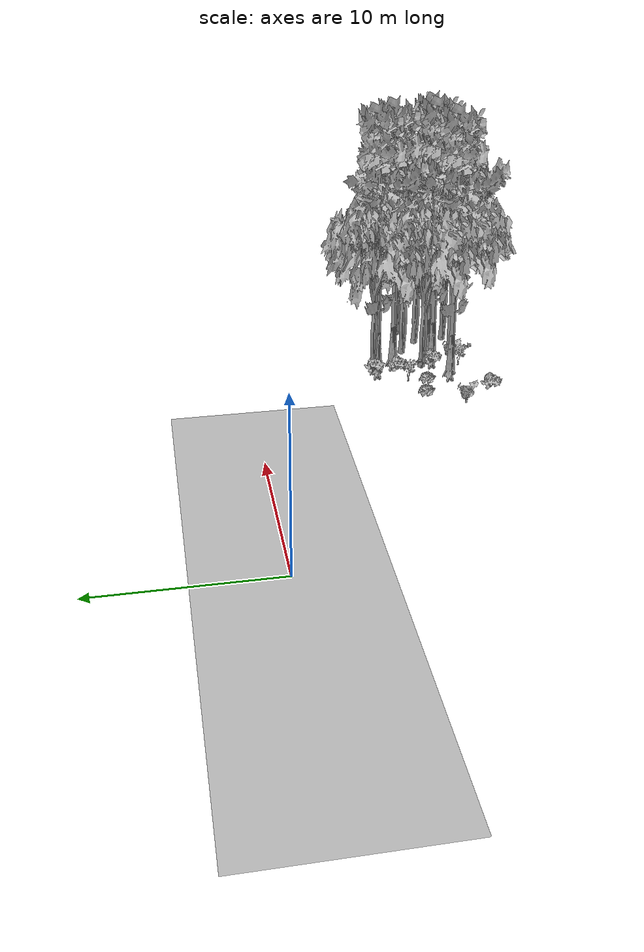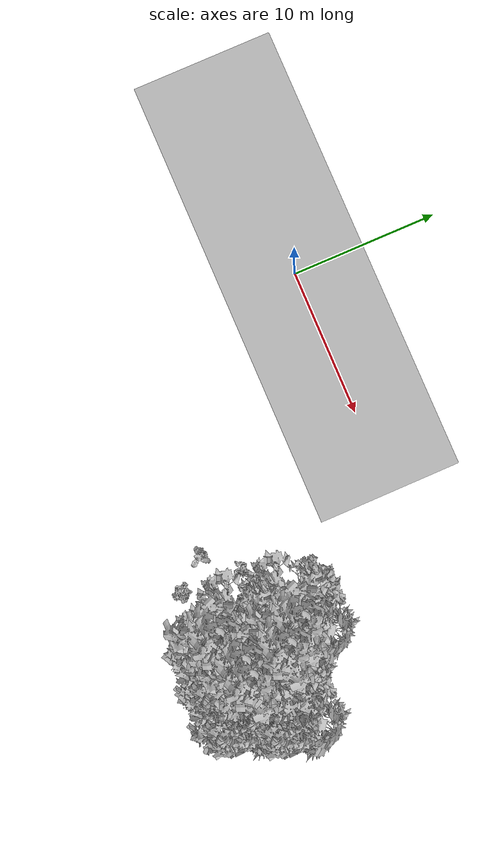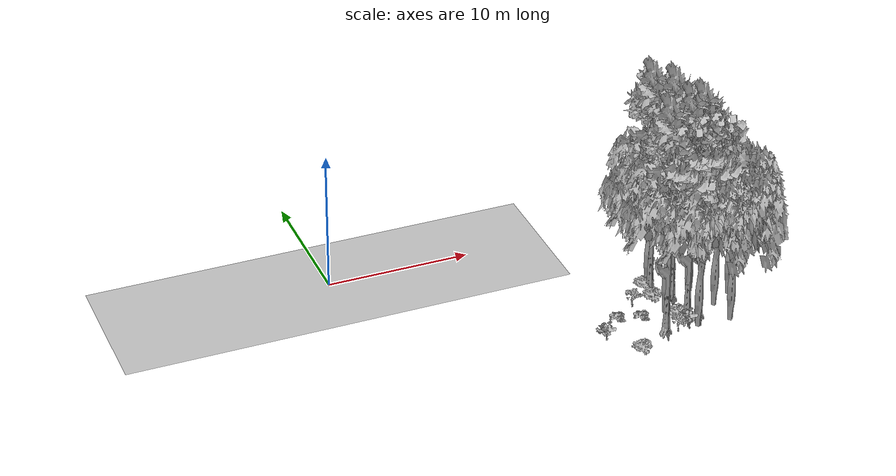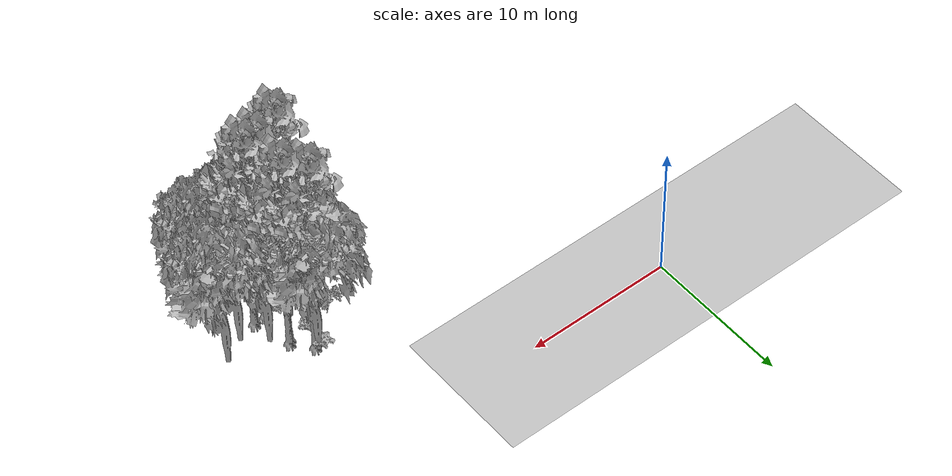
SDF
<sdf version="1.7">
 <world name="default">
  <model name="ground_plane">
   <static>1</static>
   <link name="link">
    <collision name="collision">
     <geometry><plane><normal>0 0 1</normal><size>100 100</size></plane></geometry>
     <surface><contact><ode><min_depth>0.01</min_depth><max_vel>0</max_vel></ode></contact></surface>
    </collision>
    <visual name="grass">
     <cast_shadows>0</cast_shadows>
     <geometry>
      <mesh>
       <scale>0.5814285714285714 0.18142857142857144 0.1</scale>
       <uri>file://grass_plane/meshes/grass_plane.dae</uri>
      </mesh>
     </geometry>
    </visual>
   </link>
  </model>
  <model name="Tree 56">
   <static>1</static>
   <pose>19.806158951901168 -8.2698413051378 0 1.57079 -0 0</pose>
   <link name="link">
    <collision name="collision">
     <geometry><mesh><scale>3.5 5 3.5</scale><uri>model://tree_2/meshes/tree_2.obj</uri></mesh></geometry>
    </collision>
    <visual name="visual">
     <geometry><mesh><scale>3.5 5 3.5</scale><uri>model://tree_2/meshes/tree_2.obj</uri></mesh></geometry>
    </visual>
   </link>
  </model>
  <model name="Tree 112">
   <static>1</static>
   <pose>20.93973461222818 -13.61270162273516 0 1.57079 -0 0</pose>
   <link name="link">
    <collision name="collision">
     <geometry><mesh><scale>3.5 5 3.5</scale><uri>model://tree_2/meshes/tree_2.obj</uri></mesh></geometry>
    </collision>
    <visual name="visual">
     <geometry><mesh><scale>3.5 5 3.5</scale><uri>model://tree_2/meshes/tree_2.obj</uri></mesh></geometry>
    </visual>
   </link>
  </model>
  <model name="Tree 119">
   <static>1</static>
   <pose>20.83674734473921 -12.37633859954423 0 1.57079 -0 0</pose>
   <link name="link">
    <collision name="collision">
     <geometry><mesh><scale>3.5 5 3.5</scale><uri>model://tree_9/meshes/tree_9.obj</uri></mesh></geometry>
    </collision>
    <visual name="visual">
     <geometry><mesh><scale>3.5 5 3.5</scale><uri>model://tree_9/meshes/tree_9.obj</uri></mesh></geometry>
    </visual>
   </link>
  </model>
  <model name="Tree 129">
   <static>1</static>
   <pose>23.263466010147127 -13.750721745207017 0 1.57079 -0 0</pose>
   <link name="link">
    <collision name="collision">
     <geometry><mesh><scale>3.5 5 3.5</scale><uri>model://tree_2/meshes/tree_2.obj</uri></mesh></geometry>
    </collision>
    <visual name="visual">
     <geometry><mesh><scale>3.5 5 3.5</scale><uri>model://tree_2/meshes/tree_2.obj</uri></mesh></geometry>
    </visual>
   </link>
  </model>
  <model name="Tree 134">
   <static>1</static>
   <pose>18.934934504205003 -13.101548478449867 0 1.57079 -0 0</pose>
   <link name="link">
    <collision name="collision">
     <geometry><mesh><scale>3.5 5 3.5</scale><uri>model://tree_9/meshes/tree_9.obj</uri></mesh></geometry>
    </collision>
    <visual name="visual">
     <geometry><mesh><scale>3.5 5 3.5</scale><uri>model://tree_9/meshes/tree_9.obj</uri></mesh></geometry>
    </visual>
   </link>
  </model>
  <model name="Tree 159">
   <static>1</static>
   <pose>23.039140079172057 -11.783612260644292 0 1.57079 -0 0</pose>
   <link name="link">
    <collision name="collision">
     <geometry><mesh><scale>3.5 5 3.5</scale><uri>model://tree_2/meshes/tree_2.obj</uri></mesh></geometry>
    </collision>
    <visual name="visual">
     <geometry><mesh><scale>3.5 5 3.5</scale><uri>model://tree_2/meshes/tree_2.obj</uri></mesh></geometry>
    </visual>
   </link>
  </model>
  <model name="Tree 201">
   <static>1</static>
   <pose>20.95053704268986 -9.780464681039826 0 1.57079 -0 0</pose>
   <link name="link">
    <collision name="collision">
     <geometry><mesh><scale>3.5 5 3.5</scale><uri>model://tree_9/meshes/tree_9.obj</uri></mesh></geometry>
    </collision>
    <visual name="visual">
     <geometry><mesh><scale>3.5 5 3.5</scale><uri>model://tree_9/meshes/tree_9.obj</uri></mesh></geometry>
    </visual>
   </link>
  </model>
  <model name="Tree 274">
   <static>1</static>
   <pose>21.71490230964244 -10.603329901012309 0 1.57079 -0 0</pose>
   <link name="link">
    <collision name="collision">
     <geometry><mesh><scale>3.5 5 3.5</scale><uri>model://tree_2/meshes/tree_2.obj</uri></mesh></geometry>
    </collision>
    <visual name="visual">
     <geometry><mesh><scale>3.5 5 3.5</scale><uri>model://tree_2/meshes/tree_2.obj</uri></mesh></geometry>
    </visual>
   </link>
  </model>
  <model name="Tree 359">
   <static>1</static>
   <pose>19.60370483660732 -11.414586628778373 0 1.57079 -0 0</pose>
   <link name="link">
    <collision name="collision">
     <geometry><mesh><scale>3.5 5 3.5</scale><uri>model://tree_2/meshes/tree_2.obj</uri></mesh></geometry>
    </collision>
    <visual name="visual">
     <geometry><mesh><scale>3.5 5 3.5</scale><uri>model://tree_2/meshes/tree_2.obj</uri></mesh></geometry>
    </visual>
   </link>
  </model>
  <model name="Tree 376">
   <static>1</static>
   <pose>19.949304735965327 -8.543225003568478 0 1.57079 -0 0</pose>
   <link name="link">
    <collision name="collision">
     <geometry><mesh><scale>3.5 5 3.5</scale><uri>model://tree_9/meshes/tree_9.obj</uri></mesh></geometry>
    </collision>
    <visual name="visual">
     <geometry><mesh><scale>3.5 5 3.5</scale><uri>model://tree_9/meshes/tree_9.obj</uri></mesh></geometry>
    </visual>
   </link>
  </model>
  <model name="Tree 384">
   <static>1</static>
   <pose>24.547395381403874 -10.911358151427283 0 1.57079 -0 0</pose>
   <link name="link">
    <collision name="collision">
     <geometry><mesh><scale>3.5 5 3.5</scale><uri>model://tree_2/meshes/tree_2.obj</uri></mesh></geometry>
    </collision>
    <visual name="visual">
     <geometry><mesh><scale>3.5 5 3.5</scale><uri>model://tree_2/meshes/tree_2.obj</uri></mesh></geometry>
    </visual>
   </link>
  </model>
  <model name="Tree 448">
   <static>1</static>
   <pose>21.709396777524688 -12.313115073122754 0 1.57079 -0 0</pose>
   <link name="link">
    <collision name="collision">
     <geometry><mesh><scale>3.5 5 3.5</scale><uri>model://tree_9/meshes/tree_9.obj</uri></mesh></geometry>
    </collision>
    <visual name="visual">
     <geometry><mesh><scale>3.5 5 3.5</scale><uri>model://tree_9/meshes/tree_9.obj</uri></mesh></geometry>
    </visual>
   </link>
  </model>
  <model name="Bush 16">
   <static>1</static>
   <pose>17.966224694473226 -11.375318207968771 0 1.57079 -0 0</pose>
   <link name="link">
    <collision name="collision">
     <geometry><mesh><scale>2 2 2</scale><uri>model://bush_2/meshes/bush_2.obj</uri></mesh></geometry>
     <surface><contact><collide_without_contact>false</collide_without_contact></contact></surface>
    </collision>
    <visual name="visual">
     <geometry><mesh><scale>2 2 2</scale><uri>model://bush_2/meshes/bush_2.obj</uri></mesh></geometry>
    </visual>
   </link>
  </model>
  <model name="Bush 78">
   <static>1</static>
   <pose>16.360155387166714 -14.961896447768893 0 1.57079 -0 0</pose>
   <link name="link">
    <collision name="collision">
     <geometry><mesh><scale>2 2 2</scale><uri>model://bush_3/meshes/bush_3.obj</uri></mesh></geometry>
     <surface><contact><collide_without_contact>false</collide_without_contact></contact></surface>
    </collision>
    <visual name="visual">
     <geometry><mesh><scale>2 2 2</scale><uri>model://bush_3/meshes/bush_3.obj</uri></mesh></geometry>
    </visual>
   </link>
  </model>
  <model name="Bush 118">
   <static>1</static>
   <pose>19.515133612943927 -13.768112935674834 0 1.57079 -0 0</pose>
   <link name="link">
    <collision name="collision">
     <geometry><mesh><scale>2 2 2</scale><uri>model://bush_5/meshes/bush_5.obj</uri></mesh></geometry>
     <surface><contact><collide_without_contact>false</collide_without_contact></contact></surface>
    </collision>
    <visual name="visual">
     <geometry><mesh><scale>2 2 2</scale><uri>model://bush_5/meshes/bush_5.obj</uri></mesh></geometry>
    </visual>
   </link>
  </model>
  <model name="Bush 190">
   <static>1</static>
   <pose>20.358947356843032 -13.47265205097413 0 1.57079 -0 0</pose>
   <link name="link">
    <collision name="collision">
     <geometry><mesh><scale>2 2 2</scale><uri>model://bush_0/meshes/bush_0.obj</uri></mesh></geometry>
     <surface><contact><collide_without_contact>false</collide_without_contact></contact></surface>
    </collision>
    <visual name="visual">
     <geometry><mesh><scale>2 2 2</scale><uri>model://bush_0/meshes/bush_0.obj</uri></mesh></geometry>
    </visual>
   </link>
  </model>
  <model name="Bush 217">
   <static>1</static>
   <pose>19.675007969497344 -8.240076776275489 0 1.57079 -0 0</pose>
   <link name="link">
    <collision name="collision">
     <geometry><mesh><scale>2 2 2</scale><uri>model://bush_3/meshes/bush_3.obj</uri></mesh></geometry>
     <surface><contact><collide_without_contact>false</collide_without_contact></contact></surface>
    </collision>
    <visual name="visual">
     <geometry><mesh><scale>2 2 2</scale><uri>model://bush_3/meshes/bush_3.obj</uri></mesh></geometry>
    </visual>
   </link>
  </model>
  <model name="Bush 220">
   <static>1</static>
   <pose>16.400025901025757 -10.9312259740682 0 1.57079 -0 0</pose>
   <link name="link">
    <collision name="collision">
     <geometry><mesh><scale>2 2 2</scale><uri>model://bush_2/meshes/bush_2.obj</uri></mesh></geometry>
     <surface><contact><collide_without_contact>false</collide_without_contact></contact></surface>
    </collision>
    <visual name="visual">
     <geometry><mesh><scale>2 2 2</scale><uri>model://bush_2/meshes/bush_2.obj</uri></mesh></geometry>
    </visual>
   </link>
  </model>
  <model name="Bush 222">
   <static>1</static>
   <pose>20.18722199062023 -12.147507760627745 0 1.57079 -0 0</pose>
   <link name="link">
    <collision name="collision">
     <geometry><mesh><scale>2 2 2</scale><uri>model://bush_3/meshes/bush_3.obj</uri></mesh></geometry>
     <surface><contact><collide_without_contact>false</collide_without_contact></contact></surface>
    </collision>
    <visual name="visual">
     <geometry><mesh><scale>2 2 2</scale><uri>model://bush_3/meshes/bush_3.obj</uri></mesh></geometry>
    </visual>
   </link>
  </model>
  <model name="Bush 240">
   <static>1</static>
   <pose>17.932332491151556 -10.080834530327445 0 1.57079 -0 0</pose>
   <link name="link">
    <collision name="collision">
     <geometry><mesh><scale>2 2 2</scale><uri>model://bush_5/meshes/bush_5.obj</uri></mesh></geometry>
     <surface><contact><collide_without_contact>false</collide_without_contact></contact></surface>
    </collision>
    <visual name="visual">
     <geometry><mesh><scale>2 2 2</scale><uri>model://bush_5/meshes/bush_5.obj</uri></mesh></geometry>
    </visual>
   </link>
  </model>
  <model name="Bush 247">
   <static>1</static>
   <pose>19.579825125491524 -9.775278209890114 0 1.57079 -0 0</pose>
   <link name="link">
    <collision name="collision">
     <geometry><mesh><scale>2 2 2</scale><uri>model://bush_3/meshes/bush_3.obj</uri></mesh></geometry>
     <surface><contact><collide_without_contact>false</collide_without_contact></contact></surface>
    </collision>
    <visual name="visual">
     <geometry><mesh><scale>2 2 2</scale><uri>model://bush_3/meshes/bush_3.obj</uri></mesh></geometry>
    </visual>
   </link>
  </model>
  <model name="Bush 266">
   <static>1</static>
   <pose>14.703593573561562 -12.914522813939705 0 1.57079 -0 0</pose>
   <link name="link">
    <collision name="collision">
     <geometry><mesh><scale>2 2 2</scale><uri>model://bush_0/meshes/bush_0.obj</uri></mesh></geometry>
     <surface><contact><collide_without_contact>false</collide_without_contact></contact></surface>
    </collision>
    <visual name="visual">
     <geometry><mesh><scale>2 2 2</scale><uri>model://bush_0/meshes/bush_0.obj</uri></mesh></geometry>
    </visual>
   </link>
  </model>
 </world>
</sdf>
